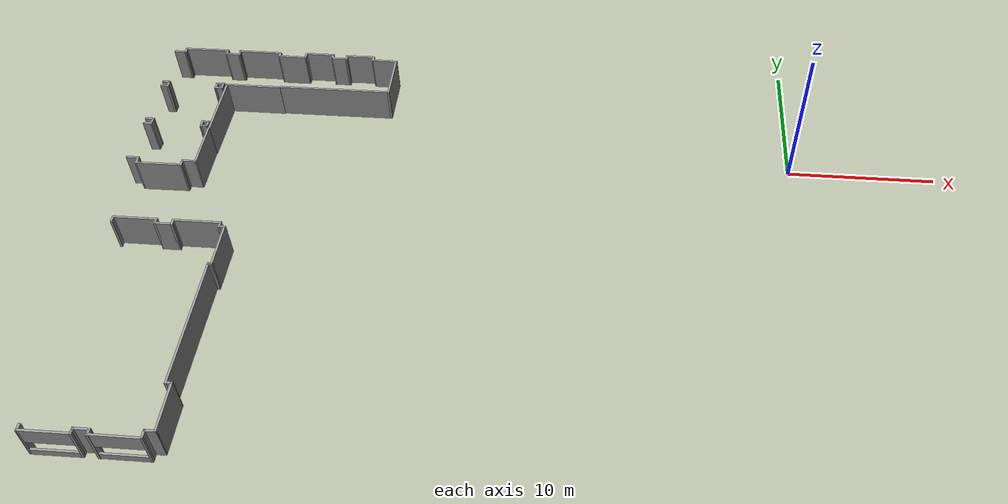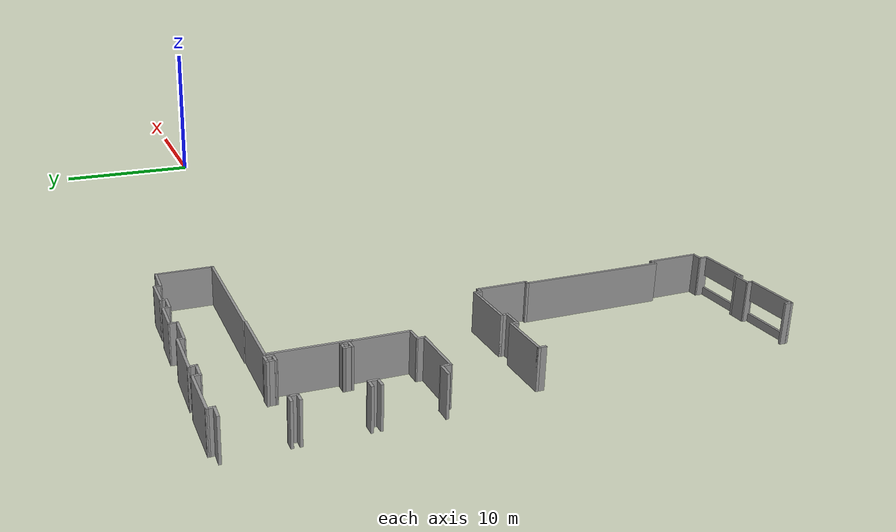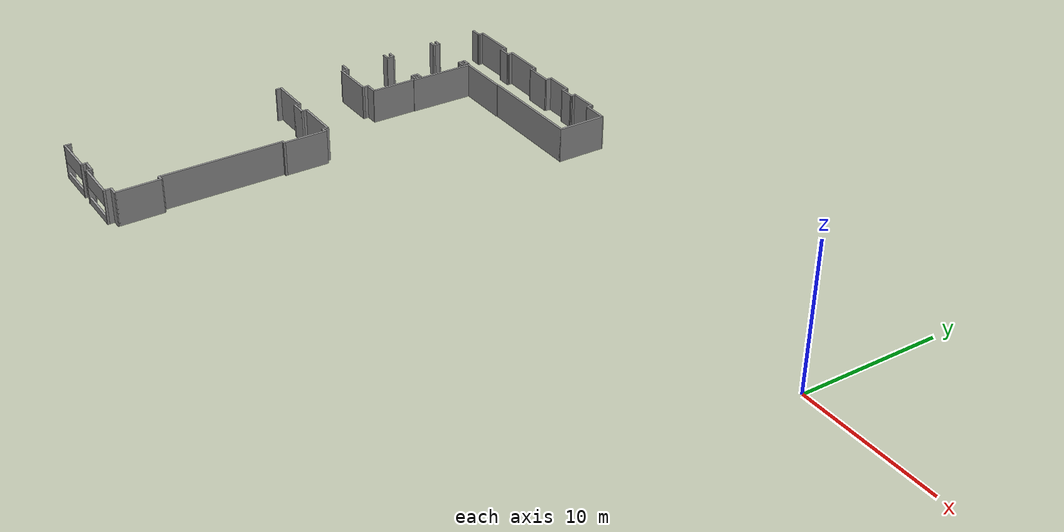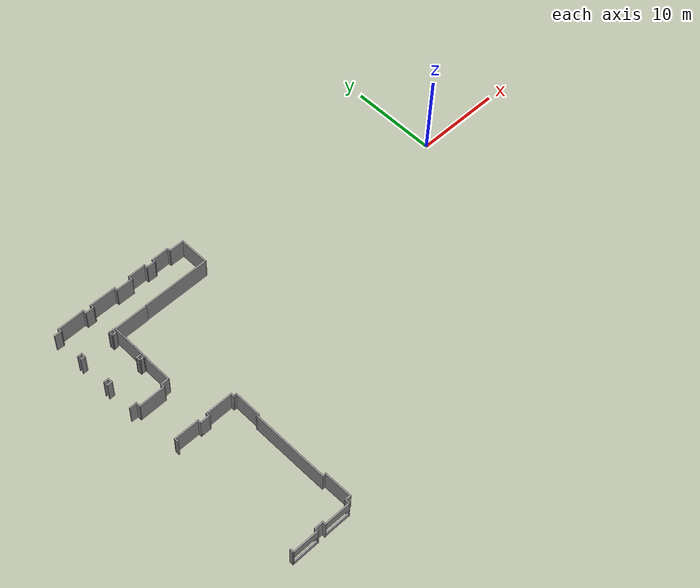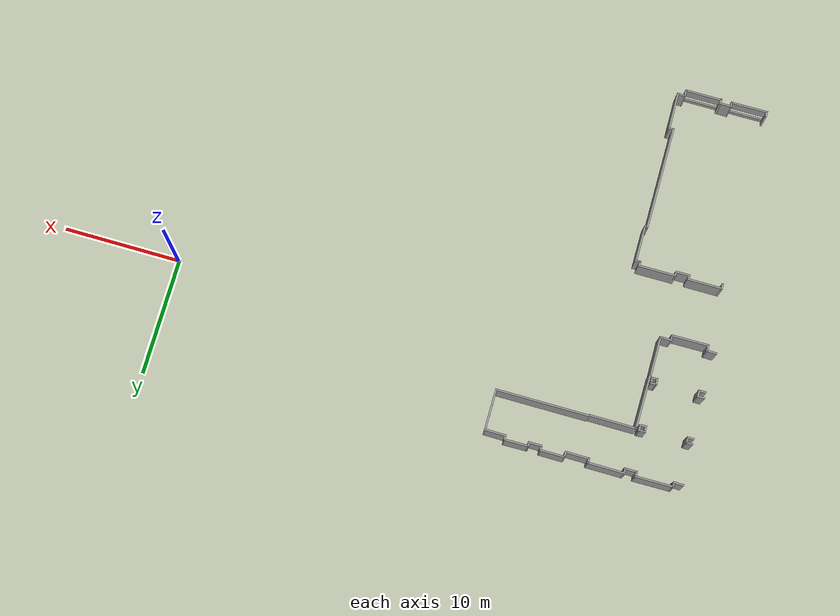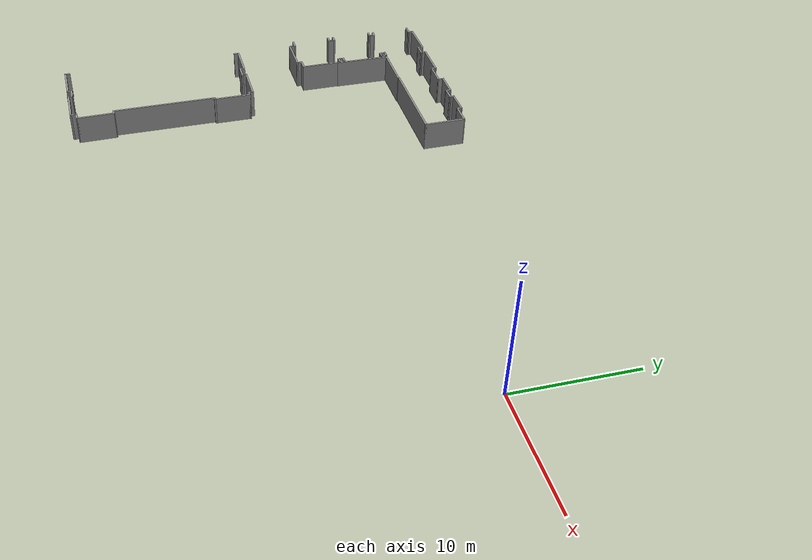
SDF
<sdf version="1.7">
 <model name="TD_n1">
  <pose>-30.6319 -9.22369 0 0 -0 0</pose>
  <link name="Door_3">
   <collision name="Door_3_Collision"><geometry><box><size>0 0.2 0</size></box></geometry></collision>
   <visual name="Door_3_Visual">
    <geometry><box><size>0 0.2 0</size></box></geometry>
    <material>
     <script><uri>file://media/materials/scripts/gazebo.material</uri><name>Gazebo/Grey</name></script>
    </material>
   </visual>
   <pose>30.6319 9.22369 0 0 0 -0.001641</pose>
  </link>
  <link name="Wall_10">
   <collision name="Wall_10_Collision">
    <geometry><box><size>3.25 0.15 2.5</size></box></geometry>
    <pose>0 0 1.25 0 -0 0</pose>
   </collision>
   <visual name="Wall_10_Visual">
    <pose>0 0 1.25 0 -0 0</pose>
    <geometry><box><size>3.25 0.15 2.5</size></box></geometry>
    <material>
     <script><uri>file://media/materials/scripts/gazebo.material</uri><name>Gazebo/Grey</name></script>
     <ambient>1 1 1 1</ambient>
    </material>
    <meta><layer>0</layer></meta>
   </visual>
   <pose>-8.21265 -0.375309 0 0 -0 0</pose>
  </link>
  <link name="Wall_11">
   <collision name="Wall_11_Collision">
    <geometry><box><size>0.5 0.15 2.5</size></box></geometry>
    <pose>0 0 1.25 0 -0 0</pose>
   </collision>
   <visual name="Wall_11_Visual">
    <pose>0 0 1.25 0 -0 0</pose>
    <geometry><box><size>0.5 0.15 2.5</size></box></geometry>
    <material>
     <script><uri>file://media/materials/scripts/gazebo.material</uri><name>Gazebo/Grey</name></script>
     <ambient>1 1 1 1</ambient>
    </material>
    <meta><layer>0</layer></meta>
   </visual>
   <pose>-6.66265 -0.55031 0 0 -0 -1.5708</pose>
  </link>
  <link name="Wall_12">
   <collision name="Wall_12_Collision">
    <geometry><box><size>0.5 0.15 2.5</size></box></geometry>
    <pose>0 0 1.25 0 -0 0</pose>
   </collision>
   <visual name="Wall_12_Visual">
    <pose>0 0 1.25 0 -0 0</pose>
    <geometry><box><size>0.5 0.15 2.5</size></box></geometry>
    <material>
     <script><uri>file://media/materials/scripts/gazebo.material</uri><name>Gazebo/Grey</name></script>
     <ambient>1 1 1 1</ambient>
    </material>
    <meta><layer>0</layer></meta>
   </visual>
   <pose>-6.48765 -0.72531 0 0 -0 0</pose>
  </link>
  <link name="Wall_13">
   <collision name="Wall_13_Collision">
    <geometry><box><size>3.25 0.15 2.5</size></box></geometry>
    <pose>0 0 1.25 0 -0 0</pose>
   </collision>
   <visual name="Wall_13_Visual">
    <pose>0 0 1.25 0 -0 0</pose>
    <geometry><box><size>3.25 0.15 2.5</size></box></geometry>
    <material>
     <script><uri>file://media/materials/scripts/gazebo.material</uri><name>Gazebo/Grey</name></script>
     <ambient>1 1 1 1</ambient>
    </material>
    <meta><layer>0</layer></meta>
   </visual>
   <pose>-6.31265 -2.27531 0 0 -0 -1.5708</pose>
  </link>
  <link name="Wall_14">
   <collision name="Wall_14_Collision">
    <geometry><box><size>0.25 0.15 2.5</size></box></geometry>
    <pose>0 0 1.25 0 -0 0</pose>
   </collision>
   <visual name="Wall_14_Visual">
    <pose>0 0 1.25 0 -0 0</pose>
    <geometry><box><size>0.25 0.15 2.5</size></box></geometry>
    <material>
     <script><uri>file://media/materials/scripts/gazebo.material</uri><name>Gazebo/Grey</name></script>
     <ambient>1 1 1 1</ambient>
    </material>
    <meta><layer>0</layer></meta>
   </visual>
   <pose>-6.36265 -3.82531 0 0 -0 3.14159</pose>
  </link>
  <link name="Wall_141">
   <collision name="Wall_141_Collision">
    <geometry><box><size>0.902276 0.15 2.5</size></box></geometry>
    <pose>0 0 1.25 0 -0 0</pose>
   </collision>
   <visual name="Wall_141_Visual">
    <pose>0 0 1.25 0 -0 0</pose>
    <geometry><box><size>0.902276 0.15 2.5</size></box></geometry>
    <material>
     <script><uri>file://media/materials/scripts/gazebo.material</uri><name>Gazebo/Grey</name></script>
     <ambient>1 1 1 1</ambient>
    </material>
    <meta><layer>0</layer></meta>
   </visual>
   <pose>-14.1938 5.06918 0 0 -0 -0.023252</pose>
  </link>
  <link name="Wall_142">
   <collision name="Wall_142_Collision">
    <geometry><box><size>0.623525 0.15 2.5</size></box></geometry>
    <pose>0 0 1.25 0 -0 0</pose>
   </collision>
   <visual name="Wall_142_Visual">
    <pose>0 0 1.25 0 -0 0</pose>
    <geometry><box><size>0.623525 0.15 2.5</size></box></geometry>
    <material>
     <script><uri>file://media/materials/scripts/gazebo.material</uri><name>Gazebo/Grey</name></script>
     <ambient>1 1 1 1</ambient>
    </material>
    <meta><layer>0</layer></meta>
   </visual>
   <pose>-13.809 4.82432 0 0 -0 -1.53378</pose>
  </link>
  <link name="Wall_143">
   <collision name="Wall_143_Collision">
    <geometry><box><size>3.21067 0.15 2.5</size></box></geometry>
    <pose>0 0 1.25 0 -0 0</pose>
   </collision>
   <visual name="Wall_143_Visual">
    <pose>0 0 1.25 0 -0 0</pose>
    <geometry><box><size>3.21067 0.15 2.5</size></box></geometry>
    <material>
     <script><uri>file://media/materials/scripts/gazebo.material</uri><name>Gazebo/Grey</name></script>
     <ambient>1 1 1 1</ambient>
    </material>
    <meta><layer>0</layer></meta>
   </visual>
   <pose>-12.27 4.59859 0 0 -0 0.006783</pose>
  </link>
  <link name="Wall_144">
   <collision name="Wall_144_Collision">
    <geometry><box><size>0.546457 0.15 2.5</size></box></geometry>
    <pose>0 0 1.25 0 -0 0</pose>
   </collision>
   <visual name="Wall_144_Visual">
    <pose>0 0 1.25 0 -0 0</pose>
    <geometry><box><size>0.546457 0.15 2.5</size></box></geometry>
    <material>
     <script><uri>file://media/materials/scripts/gazebo.material</uri><name>Gazebo/Grey</name></script>
     <ambient>1 1 1 1</ambient>
    </material>
    <meta><layer>0</layer></meta>
   </visual>
   <pose>-10.7428 4.80708 0 0 -0 1.56986</pose>
  </link>
  <link name="Wall_145">
   <collision name="Wall_145_Collision">
    <geometry><box><size>0.962787 0.15 2.5</size></box></geometry>
    <pose>0 0 1.25 0 -0 0</pose>
   </collision>
   <visual name="Wall_145_Visual">
    <pose>0 0 1.25 0 -0 0</pose>
    <geometry><box><size>0.962787 0.15 2.5</size></box></geometry>
    <material>
     <script><uri>file://media/materials/scripts/gazebo.material</uri><name>Gazebo/Grey</name></script>
     <ambient>1 1 1 1</ambient>
    </material>
    <meta><layer>0</layer></meta>
   </visual>
   <pose>-10.3362 5.00736 0 0 -0 0.005319</pose>
  </link>
  <link name="Wall_147">
   <collision name="Wall_147_Collision">
    <geometry><box><size>3.40145 0.15 2.5</size></box></geometry>
    <pose>0 0 1.25 0 -0 0</pose>
   </collision>
   <visual name="Wall_147_Visual">
    <pose>0 0 1.25 0 -0 0</pose>
    <geometry><box><size>3.40145 0.15 2.5</size></box></geometry>
    <material>
     <script><uri>file://media/materials/scripts/gazebo.material</uri><name>Gazebo/Grey</name></script>
     <ambient>1 1 1 1</ambient>
    </material>
    <meta><layer>0</layer></meta>
   </visual>
   <pose>-9.85346 6.63743 0 0 -0 1.57312</pose>
  </link>
  <link name="Wall_149">
   <collision name="Wall_149_Collision">
    <geometry><box><size>4.73903 0.15 2.5</size></box></geometry>
    <pose>0 0 1.25 0 -0 0</pose>
   </collision>
   <visual name="Wall_149_Visual">
    <pose>0 0 1.25 0 -0 0</pose>
    <geometry><box><size>4.73903 0.15 2.5</size></box></geometry>
    <material>
     <script><uri>file://media/materials/scripts/gazebo.material</uri><name>Gazebo/Grey</name></script>
     <ambient>1 1 1 1</ambient>
    </material>
    <meta><layer>0</layer></meta>
   </visual>
   <pose>-9.79598 10.5803 0 0 -0 1.5614</pose>
  </link>
  <link name="Wall_15">
   <collision name="Wall_15_Collision">
    <geometry><box><size>0.25 0.15 2.5</size></box></geometry>
    <pose>0 0 1.25 0 -0 0</pose>
   </collision>
   <visual name="Wall_15_Visual">
    <pose>0 0 1.25 0 -0 0</pose>
    <geometry><box><size>0.25 0.15 2.5</size></box></geometry>
    <material>
     <script><uri>file://media/materials/scripts/gazebo.material</uri><name>Gazebo/Grey</name></script>
     <ambient>1 1 1 1</ambient>
    </material>
    <meta><layer>0</layer></meta>
   </visual>
   <pose>-6.46265 -3.82531 0 0 -0 3.14159</pose>
  </link>
  <link name="Wall_151">
   <collision name="Wall_151_Collision">
    <geometry><box><size>3.98094 0.15 2.5</size></box></geometry>
    <pose>0 0 1.25 0 -0 0</pose>
   </collision>
   <visual name="Wall_151_Visual">
    <pose>0 0 1.25 0 -0 0</pose>
    <geometry><box><size>3.98094 0.15 2.5</size></box></geometry>
    <material>
     <script><uri>file://media/materials/scripts/gazebo.material</uri><name>Gazebo/Grey</name></script>
     <ambient>1 1 1 1</ambient>
    </material>
    <meta><layer>0</layer></meta>
   </visual>
   <pose>-7.87045 12.8812 0 0 -0 -0.002626</pose>
  </link>
  <link name="Wall_154">
   <collision name="Wall_154_Collision">
    <geometry><box><size>0.587151 0.15 2.5</size></box></geometry>
    <pose>0 0 1.25 0 -0 0</pose>
   </collision>
   <visual name="Wall_154_Visual">
    <pose>0 0 1.25 0 -0 0</pose>
    <geometry><box><size>0.587151 0.15 2.5</size></box></geometry>
    <material>
     <script><uri>file://media/materials/scripts/gazebo.material</uri><name>Gazebo/Grey</name></script>
     <ambient>1 1 1 1</ambient>
    </material>
    <meta><layer>0</layer></meta>
   </visual>
   <pose>-10.4579 8.69933 0 0 -0 -1.54449</pose>
  </link>
  <link name="Wall_155">
   <collision name="Wall_155_Collision">
    <geometry><box><size>0.56416 0.15 2.5</size></box></geometry>
    <pose>0 0 1.25 0 -0 0</pose>
   </collision>
   <visual name="Wall_155_Visual">
    <pose>0 0 1.25 0 -0 0</pose>
    <geometry><box><size>0.56416 0.15 2.5</size></box></geometry>
    <material>
     <script><uri>file://media/materials/scripts/gazebo.material</uri><name>Gazebo/Grey</name></script>
     <ambient>1 1 1 1</ambient>
    </material>
    <meta><layer>0</layer></meta>
   </visual>
   <pose>-10.2451 8.48658 0 0 -0 0.027771</pose>
  </link>
  <link name="Wall_156">
   <collision name="Wall_156_Collision">
    <geometry><box><size>0.575655 0.15 2.5</size></box></geometry>
    <pose>0 0 1.25 0 -0 0</pose>
   </collision>
   <visual name="Wall_156_Visual">
    <pose>0 0 1.25 0 -0 0</pose>
    <geometry><box><size>0.575655 0.15 2.5</size></box></geometry>
    <material>
     <script><uri>file://media/materials/scripts/gazebo.material</uri><name>Gazebo/Grey</name></script>
     <ambient>1 1 1 1</ambient>
    </material>
    <meta><layer>0</layer></meta>
   </visual>
   <pose>-10.0381 8.70508 0 0 -0 1.5708</pose>
  </link>
  <link name="Wall_159">
   <collision name="Wall_159_Collision">
    <geometry><box><size>0.545044 0.15 2.5</size></box></geometry>
    <pose>0 0 1.25 0 -0 0</pose>
   </collision>
   <visual name="Wall_159_Visual">
    <pose>0 0 1.25 0 -0 0</pose>
    <geometry><box><size>0.545044 0.15 2.5</size></box></geometry>
    <material>
     <script><uri>file://media/materials/scripts/gazebo.material</uri><name>Gazebo/Grey</name></script>
     <ambient>1 1 1 1</ambient>
    </material>
    <meta><layer>0</layer></meta>
   </visual>
   <pose>-10.2661 8.91954 0 0 -0 0.00866</pose>
  </link>
  <link name="Wall_16">
   <collision name="Wall_16_Collision">
    <geometry><box><size>0.15 0.15 2.5</size></box></geometry>
    <pose>0 0 1.25 0 -0 0</pose>
   </collision>
   <visual name="Wall_16_Visual">
    <pose>0 0 1.25 0 -0 0</pose>
    <geometry><box><size>0.15 0.15 2.5</size></box></geometry>
    <material>
     <script><uri>file://media/materials/scripts/gazebo.material</uri><name>Gazebo/Grey</name></script>
     <ambient>1 1 1 1</ambient>
    </material>
    <meta><layer>0</layer></meta>
   </visual>
   <pose>-6.51265 -3.82531 0 0 -0 0</pose>
  </link>
  <link name="Wall_17">
   <collision name="Wall_17_Collision">
    <geometry><box><size>0.15 0.15 2.5</size></box></geometry>
    <pose>0 0 1.25 0 -0 0</pose>
   </collision>
   <visual name="Wall_17_Visual">
    <pose>0 0 1.25 0 -0 0</pose>
    <geometry><box><size>0.15 0.15 2.5</size></box></geometry>
    <material>
     <script><uri>file://media/materials/scripts/gazebo.material</uri><name>Gazebo/Grey</name></script>
     <ambient>1 1 1 1</ambient>
    </material>
    <meta><layer>0</layer></meta>
   </visual>
   <pose>-6.51265 -3.82531 0 0 -0 0</pose>
  </link>
  <link name="Wall_19">
   <collision name="Wall_19_Collision">
    <geometry><box><size>9 0.15 2.5</size></box></geometry>
    <pose>0 0 1.25 0 -0 0</pose>
   </collision>
   <visual name="Wall_19_Visual">
    <pose>0 0 1.25 0 -0 0</pose>
    <geometry><box><size>9 0.15 2.5</size></box></geometry>
    <material>
     <script><uri>file://media/materials/scripts/gazebo.material</uri><name>Gazebo/Grey</name></script>
     <ambient>1 1 1 1</ambient>
    </material>
    <meta><layer>0</layer></meta>
   </visual>
   <pose>-6.51265 -8.25031 0 0 -0 -1.5708</pose>
  </link>
  <link name="Wall_20">
   <collision name="Wall_20_Collision">
    <geometry><box><size>0.5 0.15 2.5</size></box></geometry>
    <pose>0 0 1.25 0 -0 0</pose>
   </collision>
   <visual name="Wall_20_Visual">
    <pose>0 0 1.25 0 -0 0</pose>
    <geometry><box><size>0.5 0.15 2.5</size></box></geometry>
    <material>
     <script><uri>file://media/materials/scripts/gazebo.material</uri><name>Gazebo/Grey</name></script>
     <ambient>1 1 1 1</ambient>
    </material>
    <meta><layer>0</layer></meta>
   </visual>
   <pose>-6.33765 -12.6753 0 0 -0 0</pose>
  </link>
  <link name="Wall_21">
   <collision name="Wall_21_Collision">
    <geometry><box><size>3.24645 0.15 2.5</size></box></geometry>
    <pose>0 0 1.25 0 -0 0</pose>
   </collision>
   <visual name="Wall_21_Visual">
    <pose>0 0 1.25 0 -0 0</pose>
    <geometry><box><size>3.24645 0.15 2.5</size></box></geometry>
    <material>
     <script><uri>file://media/materials/scripts/gazebo.material</uri><name>Gazebo/Grey</name></script>
     <ambient>1 1 1 1</ambient>
    </material>
    <meta><layer>0</layer></meta>
   </visual>
   <pose>-6.14506 -14.2234 0 0 -0 -1.55943</pose>
  </link>
  <link name="Wall_22">
   <collision name="Wall_22_Collision">
    <geometry><box><size>0.75 0.15 2.5</size></box></geometry>
    <pose>0 0 1.25 0 -0 0</pose>
   </collision>
   <visual name="Wall_22_Visual">
    <pose>0 0 1.25 0 -0 0</pose>
    <geometry><box><size>0.75 0.15 2.5</size></box></geometry>
    <material>
     <script><uri>file://media/materials/scripts/gazebo.material</uri><name>Gazebo/Grey</name></script>
     <ambient>1 1 1 1</ambient>
    </material>
    <meta><layer>0</layer></meta>
   </visual>
   <pose>-6.42747 -15.8419 0 0 -0 3.14159</pose>
  </link>
  <link name="Wall_24">
   <collision name="Wall_24_Collision">
    <geometry><box><size>0.6281 0.15 2.5</size></box></geometry>
    <pose>0 0 1.25 0 -0 0</pose>
   </collision>
   <visual name="Wall_24_Visual">
    <pose>0 0 1.25 0 -0 0</pose>
    <geometry><box><size>0.6281 0.15 2.5</size></box></geometry>
    <material>
     <script><uri>file://media/materials/scripts/gazebo.material</uri><name>Gazebo/Grey</name></script>
     <ambient>1 1 1 1</ambient>
    </material>
    <meta><layer>0</layer></meta>
   </visual>
   <pose>-6.73142 -16.0809 0 0 -0 -1.58731</pose>
  </link>
  <link name="Wall_267">
   <collision name="Wall_267_Collision">
    <geometry><box><size>0.628143 0.15 2.5</size></box></geometry>
    <pose>0 0 1.25 0 -0 0</pose>
   </collision>
   <visual name="Wall_267_Visual">
    <pose>0 0 1.25 0 -0 0</pose>
    <geometry><box><size>0.628143 0.15 2.5</size></box></geometry>
    <material>
     <script><uri>file://media/materials/scripts/gazebo.material</uri><name>Gazebo/Grey</name></script>
     <ambient>1 1 1 1</ambient>
    </material>
    <meta><layer>0</layer></meta>
   </visual>
   <pose>-14.2413 8.46593 0 0 -0 0.020803</pose>
  </link>
  <link name="Wall_268">
   <collision name="Wall_268_Collision">
    <geometry><box><size>0.628699 0.15 2.5</size></box></geometry>
    <pose>0 0 1.25 0 -0 0</pose>
   </collision>
   <visual name="Wall_268_Visual">
    <pose>0 0 1.25 0 -0 0</pose>
    <geometry><box><size>0.628699 0.15 2.5</size></box></geometry>
    <material>
     <script><uri>file://media/materials/scripts/gazebo.material</uri><name>Gazebo/Grey</name></script>
     <ambient>1 1 1 1</ambient>
    </material>
    <meta><layer>0</layer></meta>
   </visual>
   <pose>-13.9902 8.71024 0 0 -0 1.56138</pose>
  </link>
  <link name="Wall_270">
   <collision name="Wall_270_Collision">
    <geometry><box><size>0.647202 0.15 2.5</size></box></geometry>
    <pose>0 0 1.25 0 -0 0</pose>
   </collision>
   <visual name="Wall_270_Visual">
    <pose>0 0 1.25 0 -0 0</pose>
    <geometry><box><size>0.647202 0.15 2.5</size></box></geometry>
    <material>
     <script><uri>file://media/materials/scripts/gazebo.material</uri><name>Gazebo/Grey</name></script>
     <ambient>1 1 1 1</ambient>
    </material>
    <meta><layer>0</layer></meta>
   </visual>
   <pose>-14.2365 8.95206 0 0 -0 -0.01</pose>
  </link>
  <link name="Wall_29">
   <collision name="Wall_29_Collision">
    <geometry><box><size>0.5 0.15 2.5</size></box></geometry>
    <pose>0 0 1.25 0 -0 0</pose>
   </collision>
   <visual name="Wall_29_Visual">
    <pose>0 0 1.25 0 -0 0</pose>
    <geometry><box><size>0.5 0.15 2.5</size></box></geometry>
    <material>
     <script><uri>file://media/materials/scripts/gazebo.material</uri><name>Gazebo/Grey</name></script>
     <ambient>1 1 1 1</ambient>
    </material>
    <meta><layer>0</layer></meta>
   </visual>
   <pose>-9.77392 -16.1762 0 0 -0 -1.5708</pose>
  </link>
  <link name="Wall_31">
   <collision name="Wall_31_Collision">
    <geometry><box><size>1.08081 0.15 2.5</size></box></geometry>
    <pose>0 0 1.25 0 -0 0</pose>
   </collision>
   <visual name="Wall_31_Visual">
    <pose>0 0 1.25 0 -0 0</pose>
    <geometry><box><size>1.08081 0.15 2.5</size></box></geometry>
    <material>
     <script><uri>file://media/materials/scripts/gazebo.material</uri><name>Gazebo/Grey</name></script>
     <ambient>1 1 1 1</ambient>
    </material>
    <meta><layer>0</layer></meta>
   </visual>
   <pose>-10.2393 -15.9966 0 0 -0 3.12103</pose>
  </link>
  <link name="Wall_36">
   <collision name="Wall_36_Collision">
    <geometry><box><size>0.475293 0.15 2.5</size></box></geometry>
    <pose>0 0 1.25 0 -0 0</pose>
   </collision>
   <visual name="Wall_36_Visual">
    <pose>0 0 1.25 0 -0 0</pose>
    <geometry><box><size>0.475293 0.15 2.5</size></box></geometry>
    <material>
     <script><uri>file://media/materials/scripts/gazebo.material</uri><name>Gazebo/Grey</name></script>
     <ambient>1 1 1 1</ambient>
    </material>
    <meta><layer>0</layer></meta>
   </visual>
   <pose>-10.7097 -16.1596 0 0 -0 -1.60137</pose>
  </link>
  <link name="Wall_360">
   <collision name="Wall_360_Collision">
    <geometry><box><size>0.904868 0.15 2.5</size></box></geometry>
    <pose>0 0 1.25 0 -0 0</pose>
   </collision>
   <visual name="Wall_360_Visual">
    <pose>0 0 1.25 0 -0 0</pose>
    <geometry><box><size>0.904868 0.15 2.5</size></box></geometry>
    <material>
     <script><uri>file://media/materials/scripts/gazebo.material</uri><name>Gazebo/Grey</name></script>
     <ambient>1 1 1 1</ambient>
    </material>
    <meta><layer>0</layer></meta>
   </visual>
   <pose>-14.2031 16.3257 0 0 -0 -0.017542</pose>
  </link>
  <link name="Wall_361">
   <collision name="Wall_361_Collision">
    <geometry><box><size>0.50732 0.15 2.5</size></box></geometry>
    <pose>0 0 1.25 0 -0 0</pose>
   </collision>
   <visual name="Wall_361_Visual">
    <pose>0 0 1.25 0 -0 0</pose>
    <geometry><box><size>0.50732 0.15 2.5</size></box></geometry>
    <material>
     <script><uri>file://media/materials/scripts/gazebo.material</uri><name>Gazebo/Grey</name></script>
     <ambient>1 1 1 1</ambient>
    </material>
    <meta><layer>0</layer></meta>
   </visual>
   <pose>-13.8328 16.4976 0 0 -0 1.60782</pose>
  </link>
  <link name="Wall_362">
   <collision name="Wall_362_Collision">
    <geometry><box><size>3.27155 0.15 2.5</size></box></geometry>
    <pose>0 0 1.25 0 -0 0</pose>
   </collision>
   <visual name="Wall_362_Visual">
    <pose>0 0 1.25 0 -0 0</pose>
    <geometry><box><size>3.27155 0.15 2.5</size></box></geometry>
    <material>
     <script><uri>file://media/materials/scripts/gazebo.material</uri><name>Gazebo/Grey</name></script>
     <ambient>1 1 1 1</ambient>
    </material>
    <meta><layer>0</layer></meta>
   </visual>
   <pose>-12.2789 16.6894 0 0 -0 0.008474</pose>
  </link>
  <link name="Wall_363">
   <collision name="Wall_363_Collision">
    <geometry><box><size>0.533753 0.15 2.5</size></box></geometry>
    <pose>0 0 1.25 0 -0 0</pose>
   </collision>
   <visual name="Wall_363_Visual">
    <pose>0 0 1.25 0 -0 0</pose>
    <geometry><box><size>0.533753 0.15 2.5</size></box></geometry>
    <material>
     <script><uri>file://media/materials/scripts/gazebo.material</uri><name>Gazebo/Grey</name></script>
     <ambient>1 1 1 1</ambient>
    </material>
    <meta><layer>0</layer></meta>
   </visual>
   <pose>-10.7117 16.5108 0 0 -0 -1.53633</pose>
  </link>
  <link name="Wall_364">
   <collision name="Wall_364_Collision">
    <geometry><box><size>1.1022 0.15 2.5</size></box></geometry>
    <pose>0 0 1.25 0 -0 0</pose>
   </collision>
   <visual name="Wall_364_Visual">
    <pose>0 0 1.25 0 -0 0</pose>
    <geometry><box><size>1.1022 0.15 2.5</size></box></geometry>
    <material>
     <script><uri>file://media/materials/scripts/gazebo.material</uri><name>Gazebo/Grey</name></script>
     <ambient>1 1 1 1</ambient>
    </material>
    <meta><layer>0</layer></meta>
   </visual>
   <pose>-10.229 16.3125 0 0 -0 -0.013888</pose>
  </link>
  <link name="Wall_365">
   <collision name="Wall_365_Collision">
    <geometry><box><size>0.534436 0.15 2.5</size></box></geometry>
    <pose>0 0 1.25 0 -0 0</pose>
   </collision>
   <visual name="Wall_365_Visual">
    <pose>0 0 1.25 0 -0 0</pose>
    <geometry><box><size>0.534436 0.15 2.5</size></box></geometry>
    <material>
     <script><uri>file://media/materials/scripts/gazebo.material</uri><name>Gazebo/Grey</name></script>
     <ambient>1 1 1 1</ambient>
    </material>
    <meta><layer>0</layer></meta>
   </visual>
   <pose>-9.76612 16.4976 0 0 -0 1.63965</pose>
  </link>
  <link name="Wall_366">
   <collision name="Wall_366_Collision">
    <geometry><box><size>3.19178 0.15 2.5</size></box></geometry>
    <pose>0 0 1.25 0 -0 0</pose>
   </collision>
   <visual name="Wall_366_Visual">
    <pose>0 0 1.25 0 -0 0</pose>
    <geometry><box><size>3.19178 0.15 2.5</size></box></geometry>
    <material>
     <script><uri>file://media/materials/scripts/gazebo.material</uri><name>Gazebo/Grey</name></script>
     <ambient>1 1 1 1</ambient>
    </material>
    <meta><layer>0</layer></meta>
   </visual>
   <pose>-8.25847 16.6828 0 0 -0 -0.004348</pose>
  </link>
  <link name="Wall_367">
   <collision name="Wall_367_Collision">
    <geometry><box><size>0.494104 0.15 2.5</size></box></geometry>
    <pose>0 0 1.25 0 -0 0</pose>
   </collision>
   <visual name="Wall_367_Visual">
    <pose>0 0 1.25 0 -0 0</pose>
    <geometry><box><size>0.494104 0.15 2.5</size></box></geometry>
    <material>
     <script><uri>file://media/materials/scripts/gazebo.material</uri><name>Gazebo/Grey</name></script>
     <ambient>1 1 1 1</ambient>
    </material>
    <meta><layer>0</layer></meta>
   </visual>
   <pose>-6.73098 16.5042 0 0 -0 -1.53235</pose>
  </link>
  <link name="Wall_369">
   <collision name="Wall_369_Collision">
    <geometry><box><size>0.582489 0.15 2.5</size></box></geometry>
    <pose>0 0 1.25 0 -0 0</pose>
   </collision>
   <visual name="Wall_369_Visual">
    <pose>0 0 1.25 0 -0 0</pose>
    <geometry><box><size>0.582489 0.15 2.5</size></box></geometry>
    <material>
     <script><uri>file://media/materials/scripts/gazebo.material</uri><name>Gazebo/Grey</name></script>
     <ambient>1 1 1 1</ambient>
    </material>
    <meta><layer>0</layer></meta>
   </visual>
   <pose>-14.245 12.9026 0 0 -0 -0.020415</pose>
  </link>
  <link name="Wall_37">
   <collision name="Wall_37_Collision">
    <geometry><box><size>0.485232 0.15 2.5</size></box></geometry>
    <pose>0 0 1.25 0 -0 0</pose>
   </collision>
   <visual name="Wall_37_Visual">
    <pose>0 0 1.25 0 -0 0</pose>
    <geometry><box><size>0.485232 0.15 2.5</size></box></geometry>
    <material>
     <script><uri>file://media/materials/scripts/gazebo.material</uri><name>Gazebo/Grey</name></script>
     <ambient>1 1 1 1</ambient>
    </material>
    <meta><layer>0</layer></meta>
   </visual>
   <pose>-10.7097 -16.1546 0 0 -0 1.54113</pose>
  </link>
  <link name="Wall_370">
   <collision name="Wall_370_Collision">
    <geometry><box><size>0.587601 0.15 2.5</size></box></geometry>
    <pose>0 0 1.25 0 -0 0</pose>
   </collision>
   <visual name="Wall_370_Visual">
    <pose>0 0 1.25 0 -0 0</pose>
    <geometry><box><size>0.587601 0.15 2.5</size></box></geometry>
    <material>
     <script><uri>file://media/materials/scripts/gazebo.material</uri><name>Gazebo/Grey</name></script>
     <ambient>1 1 1 1</ambient>
    </material>
    <meta><layer>0</layer></meta>
   </visual>
   <pose>-14.0288 12.6796 0 0 -0 -1.5708</pose>
  </link>
  <link name="Wall_371">
   <collision name="Wall_371_Collision">
    <geometry><box><size>0.587252 0.15 2.5</size></box></geometry>
    <pose>0 0 1.25 0 -0 0</pose>
   </collision>
   <visual name="Wall_371_Visual">
    <pose>0 0 1.25 0 -0 0</pose>
    <geometry><box><size>0.587252 0.15 2.5</size></box></geometry>
    <material>
     <script><uri>file://media/materials/scripts/gazebo.material</uri><name>Gazebo/Grey</name></script>
     <ambient>1 1 1 1</ambient>
    </material>
    <meta><layer>0</layer></meta>
   </visual>
   <pose>-14.2474 12.4609 0 0 -0 3.14159</pose>
  </link>
  <link name="Wall_374">
   <collision name="Wall_374_Collision">
    <geometry><box><size>0.637267 0.15 2.5</size></box></geometry>
    <pose>0 0 1.25 0 -0 0</pose>
   </collision>
   <visual name="Wall_374_Visual">
    <pose>0 0 1.25 0 -0 0</pose>
    <geometry><box><size>0.637267 0.15 2.5</size></box></geometry>
    <material>
     <script><uri>file://media/materials/scripts/gazebo.material</uri><name>Gazebo/Grey</name></script>
     <ambient>1 1 1 1</ambient>
    </material>
    <meta><layer>0</layer></meta>
   </visual>
   <pose>-10.3047 12.9592 0 0 -0 0.035699</pose>
  </link>
  <link name="Wall_375">
   <collision name="Wall_375_Collision">
    <geometry><box><size>0.58513 0.15 2.5</size></box></geometry>
    <pose>0 0 1.25 0 -0 0</pose>
   </collision>
   <visual name="Wall_375_Visual">
    <pose>0 0 1.25 0 -0 0</pose>
    <geometry><box><size>0.58513 0.15 2.5</size></box></geometry>
    <material>
     <script><uri>file://media/materials/scripts/gazebo.material</uri><name>Gazebo/Grey</name></script>
     <ambient>1 1 1 1</ambient>
    </material>
    <meta><layer>0</layer></meta>
   </visual>
   <pose>-10.0612 12.7505 0 0 -0 -1.5708</pose>
  </link>
  <link name="Wall_376">
   <collision name="Wall_376_Collision">
    <geometry><box><size>0.611198 0.15 2.5</size></box></geometry>
    <pose>0 0 1.25 0 -0 0</pose>
   </collision>
   <visual name="Wall_376_Visual">
    <pose>0 0 1.25 0 -0 0</pose>
    <geometry><box><size>0.611198 0.15 2.5</size></box></geometry>
    <material>
     <script><uri>file://media/materials/scripts/gazebo.material</uri><name>Gazebo/Grey</name></script>
     <ambient>1 1 1 1</ambient>
    </material>
    <meta><layer>0</layer></meta>
   </visual>
   <pose>-10.2916 12.5244 0 0 -0 -3.10387</pose>
  </link>
  <link name="Wall_377">
   <collision name="Wall_377_Collision">
    <geometry><box><size>0.532707 0.15 2.5</size></box></geometry>
    <pose>0 0 1.25 0 -0 0</pose>
   </collision>
   <visual name="Wall_377_Visual">
    <pose>0 0 1.25 0 -0 0</pose>
    <geometry><box><size>0.532707 0.15 2.5</size></box></geometry>
    <material>
     <script><uri>file://media/materials/scripts/gazebo.material</uri><name>Gazebo/Grey</name></script>
     <ambient>1 1 1 1</ambient>
    </material>
    <meta><layer>0</layer></meta>
   </visual>
   <pose>-10.5177 12.707 0 0 -0 1.54807</pose>
  </link>
  <link name="Wall_389">
   <collision name="Wall_389_Collision">
    <geometry><box><size>2.06997 0.15 2.5</size></box></geometry>
    <pose>0 0 1.25 0 -0 0</pose>
   </collision>
   <visual name="Wall_389_Visual">
    <pose>0 0 1.25 0 -0 0</pose>
    <geometry><box><size>2.06997 0.15 2.5</size></box></geometry>
    <material>
     <script><uri>file://media/materials/scripts/gazebo.material</uri><name>Gazebo/Grey</name></script>
     <ambient>1 1 1 1</ambient>
    </material>
    <meta><layer>0</layer></meta>
   </visual>
   <pose>-5.76441 16.3258 0 0 -0 -0.006746</pose>
  </link>
  <link name="Wall_39">
   <pose>-8.2459 -16.3241 0 0 -0 3.1378</pose>
   <visual name="Wall_39_Visual_0">
    <pose>-1.53126 0 1.25 0 -0 0</pose>
    <geometry><box><size>0.118498 0.15 2.5</size></box></geometry>
    <material>
     <script><uri>file://media/materials/scripts/gazebo.material</uri><name>Gazebo/Grey</name></script>
     <ambient>1 1 1 1</ambient>
    </material>
    <meta><layer>0</layer></meta>
   </visual>
   <collision name="Wall_39_Collision_0">
    <geometry><box><size>0.118498 0.15 2.5</size></box></geometry>
    <pose>-1.53126 0 1.25 0 -0 0</pose>
   </collision>
   <visual name="Wall_39_Visual_1">
    <pose>0.059249 0 0.25 0 -0 0</pose>
    <geometry><box><size>3.06252 0.15 0.5</size></box></geometry>
    <material>
     <script><uri>file://media/materials/scripts/gazebo.material</uri><name>Gazebo/Grey</name></script>
     <ambient>1 1 1 1</ambient>
    </material>
    <meta><layer>0</layer></meta>
   </visual>
   <collision name="Wall_39_Collision_1">
    <geometry><box><size>3.06252 0.15 0.5</size></box></geometry>
    <pose>0.059249 0 0.25 0 -0 0</pose>
   </collision>
   <visual name="Wall_39_Visual_2">
    <pose>1.55702 0 1.5 0 -0 0</pose>
    <geometry><box><size>0.066991 0.15 2</size></box></geometry>
    <material>
     <script><uri>file://media/materials/scripts/gazebo.material</uri><name>Gazebo/Grey</name></script>
     <ambient>1 1 1 1</ambient>
    </material>
    <meta><layer>0</layer></meta>
   </visual>
   <collision name="Wall_39_Collision_2">
    <geometry><box><size>0.066991 0.15 2</size></box></geometry>
    <pose>1.55702 0 1.5 0 -0 0</pose>
   </collision>
   <visual name="Wall_39_Visual_3">
    <pose>0.025753 0 1.9 0 -0 0</pose>
    <geometry><box><size>2.99553 0.15 1.2</size></box></geometry>
    <material>
     <script><uri>file://media/materials/scripts/gazebo.material</uri><name>Gazebo/Grey</name></script>
     <ambient>1 1 1 1</ambient>
    </material>
    <meta><layer>0</layer></meta>
   </visual>
   <collision name="Wall_39_Collision_3">
    <geometry><box><size>2.99553 0.15 1.2</size></box></geometry>
    <pose>0.025753 0 1.9 0 -0 0</pose>
   </collision>
  </link>
  <link name="Wall_390">
   <collision name="Wall_390_Collision">
    <geometry><box><size>0.57693 0.15 2.5</size></box></geometry>
    <pose>0 0 1.25 0 -0 0</pose>
   </collision>
   <visual name="Wall_390_Visual">
    <pose>0 0 1.25 0 -0 0</pose>
    <geometry><box><size>0.57693 0.15 2.5</size></box></geometry>
    <material>
     <script><uri>file://media/materials/scripts/gazebo.material</uri><name>Gazebo/Grey</name></script>
     <ambient>1 1 1 1</ambient>
    </material>
    <meta><layer>0</layer></meta>
   </visual>
   <pose>-4.78924 16.5323 0 0 -0 1.49949</pose>
  </link>
  <link name="Wall_391">
   <collision name="Wall_391_Collision">
    <geometry><box><size>2.14235 0.15 2.5</size></box></geometry>
    <pose>0 0 1.25 0 -0 0</pose>
   </collision>
   <visual name="Wall_391_Visual">
    <pose>0 0 1.25 0 -0 0</pose>
    <geometry><box><size>2.14235 0.15 2.5</size></box></geometry>
    <material>
     <script><uri>file://media/materials/scripts/gazebo.material</uri><name>Gazebo/Grey</name></script>
     <ambient>1 1 1 1</ambient>
    </material>
    <meta><layer>0</layer></meta>
   </visual>
   <pose>-3.77786 16.7452 0 0 -0 0</pose>
  </link>
  <link name="Wall_392">
   <collision name="Wall_392_Collision">
    <geometry><box><size>0.516275 0.15 2.5</size></box></geometry>
    <pose>0 0 1.25 0 -0 0</pose>
   </collision>
   <visual name="Wall_392_Visual">
    <pose>0 0 1.25 0 -0 0</pose>
    <geometry><box><size>0.516275 0.15 2.5</size></box></geometry>
    <material>
     <script><uri>file://media/materials/scripts/gazebo.material</uri><name>Gazebo/Grey</name></script>
     <ambient>1 1 1 1</ambient>
    </material>
    <meta><layer>0</layer></meta>
   </visual>
   <pose>-2.76648 16.5627 0 0 -0 -1.48765</pose>
  </link>
  <link name="Wall_393">
   <collision name="Wall_393_Collision">
    <geometry><box><size>1.1842 0.15 2.5</size></box></geometry>
    <pose>0 0 1.25 0 -0 0</pose>
   </collision>
   <visual name="Wall_393_Visual">
    <pose>0 0 1.25 0 -0 0</pose>
    <geometry><box><size>1.1842 0.15 2.5</size></box></geometry>
    <material>
     <script><uri>file://media/materials/scripts/gazebo.material</uri><name>Gazebo/Grey</name></script>
     <ambient>1 1 1 1</ambient>
    </material>
    <meta><layer>0</layer></meta>
   </visual>
   <pose>-2.23417 16.3802 0 0 -0 0</pose>
  </link>
  <link name="Wall_394">
   <collision name="Wall_394_Collision">
    <geometry><box><size>0.454555 0.15 2.5</size></box></geometry>
    <pose>0 0 1.25 0 -0 0</pose>
   </collision>
   <visual name="Wall_394_Visual">
    <pose>0 0 1.25 0 -0 0</pose>
    <geometry><box><size>0.454555 0.15 2.5</size></box></geometry>
    <material>
     <script><uri>file://media/materials/scripts/gazebo.material</uri><name>Gazebo/Grey</name></script>
     <ambient>1 1 1 1</ambient>
    </material>
    <meta><layer>0</layer></meta>
   </visual>
   <pose>-1.72468 16.5323 0 0 -0 1.62075</pose>
  </link>
  <link name="Wall_395">
   <collision name="Wall_395_Collision">
    <geometry><box><size>2.12737 0.15 2.5</size></box></geometry>
    <pose>0 0 1.25 0 -0 0</pose>
   </collision>
   <visual name="Wall_395_Visual">
    <pose>0 0 1.25 0 -0 0</pose>
    <geometry><box><size>2.12737 0.15 2.5</size></box></geometry>
    <material>
     <script><uri>file://media/materials/scripts/gazebo.material</uri><name>Gazebo/Grey</name></script>
     <ambient>1 1 1 1</ambient>
    </material>
    <meta><layer>0</layer></meta>
   </visual>
   <pose>-0.743715 16.6996 0 0 -0 0.015383</pose>
  </link>
  <link name="Wall_396">
   <collision name="Wall_396_Collision">
    <geometry><box><size>0.500132 0.15 2.5</size></box></geometry>
    <pose>0 0 1.25 0 -0 0</pose>
   </collision>
   <visual name="Wall_396_Visual">
    <pose>0 0 1.25 0 -0 0</pose>
    <geometry><box><size>0.500132 0.15 2.5</size></box></geometry>
    <material>
     <script><uri>file://media/materials/scripts/gazebo.material</uri><name>Gazebo/Grey</name></script>
     <ambient>1 1 1 1</ambient>
    </material>
    <meta><layer>0</layer></meta>
   </visual>
   <pose>0.260063 16.5399 0 0 -0 -1.48406</pose>
  </link>
  <link name="Wall_397">
   <collision name="Wall_397_Collision">
    <geometry><box><size>1.86866 0.15 2.5</size></box></geometry>
    <pose>0 0 1.25 0 -0 0</pose>
   </collision>
   <visual name="Wall_397_Visual">
    <pose>0 0 1.25 0 -0 0</pose>
    <geometry><box><size>1.86866 0.15 2.5</size></box></geometry>
    <material>
     <script><uri>file://media/materials/scripts/gazebo.material</uri><name>Gazebo/Grey</name></script>
     <ambient>1 1 1 1</ambient>
    </material>
    <meta><layer>0</layer></meta>
   </visual>
   <pose>1.13457 16.3574 0 0 -0 -0.008849</pose>
  </link>
  <link name="Wall_400">
   <collision name="Wall_400_Collision">
    <geometry><box><size>7.95209 0.15 2.5</size></box></geometry>
    <pose>0 0 1.25 0 -0 0</pose>
   </collision>
   <visual name="Wall_400_Visual">
    <pose>0 0 1.25 0 -0 0</pose>
    <geometry><box><size>7.95209 0.15 2.5</size></box></geometry>
    <material>
     <script><uri>file://media/materials/scripts/gazebo.material</uri><name>Gazebo/Grey</name></script>
     <ambient>1 1 1 1</ambient>
    </material>
    <meta><layer>0</layer></meta>
   </visual>
   <pose>-1.90718 12.9278 0 0 -0 0</pose>
  </link>
  <link name="Wall_402">
   <collision name="Wall_402_Collision">
    <geometry><box><size>3.572 0.15 2.5</size></box></geometry>
    <pose>0 0 1.25 0 -0 0</pose>
   </collision>
   <visual name="Wall_402_Visual">
    <pose>0 0 1.25 0 -0 0</pose>
    <geometry><box><size>3.572 0.15 2.5</size></box></geometry>
    <material>
     <script><uri>file://media/materials/scripts/gazebo.material</uri><name>Gazebo/Grey</name></script>
     <ambient>1 1 1 1</ambient>
    </material>
    <meta><layer>0</layer></meta>
   </visual>
   <pose>1.99386 14.6388 0 0 -0 1.5708</pose>
  </link>
  <link name="Wall_41">
   <pose>-12.2341 -16.3296 0 0 -0 -3.13996</pose>
   <visual name="Wall_41_Visual_0">
    <pose>-1.52542 0 1.25 0 -0 0</pose>
    <geometry><box><size>0.148041 0.15 2.5</size></box></geometry>
    <material>
     <script><uri>file://media/materials/scripts/gazebo.material</uri><name>Gazebo/Grey</name></script>
     <ambient>1 1 1 1</ambient>
    </material>
    <meta><layer>0</layer></meta>
   </visual>
   <collision name="Wall_41_Collision_0">
    <geometry><box><size>0.148041 0.15 2.5</size></box></geometry>
    <pose>-1.52542 0 1.25 0 -0 0</pose>
   </collision>
   <visual name="Wall_41_Visual_1">
    <pose>0.07402 0 0.25 0 -0 0</pose>
    <geometry><box><size>3.05083 0.15 0.5</size></box></geometry>
    <material>
     <script><uri>file://media/materials/scripts/gazebo.material</uri><name>Gazebo/Grey</name></script>
     <ambient>1 1 1 1</ambient>
    </material>
    <meta><layer>0</layer></meta>
   </visual>
   <collision name="Wall_41_Collision_1">
    <geometry><box><size>3.05083 0.15 0.5</size></box></geometry>
    <pose>0.07402 0 0.25 0 -0 0</pose>
   </collision>
   <visual name="Wall_41_Visual_2">
    <pose>1.57037 0 1.5 0 -0 0</pose>
    <geometry><box><size>0.058128 0.15 2</size></box></geometry>
    <material>
     <script><uri>file://media/materials/scripts/gazebo.material</uri><name>Gazebo/Grey</name></script>
     <ambient>1 1 1 1</ambient>
    </material>
    <meta><layer>0</layer></meta>
   </visual>
   <collision name="Wall_41_Collision_2">
    <geometry><box><size>0.058128 0.15 2</size></box></geometry>
    <pose>1.57037 0 1.5 0 -0 0</pose>
   </collision>
   <visual name="Wall_41_Visual_3">
    <pose>0.044956 0 1.9 0 -0 0</pose>
    <geometry><box><size>2.99271 0.15 1.2</size></box></geometry>
    <material>
     <script><uri>file://media/materials/scripts/gazebo.material</uri><name>Gazebo/Grey</name></script>
     <ambient>1 1 1 1</ambient>
    </material>
    <meta><layer>0</layer></meta>
   </visual>
   <collision name="Wall_41_Collision_3">
    <geometry><box><size>2.99271 0.15 1.2</size></box></geometry>
    <pose>0.044956 0 1.9 0 -0 0</pose>
   </collision>
  </link>
  <link name="Wall_42">
   <collision name="Wall_42_Collision">
    <geometry><box><size>0.5 0.15 2.5</size></box></geometry>
    <pose>0 0 1.25 0 -0 0</pose>
   </collision>
   <visual name="Wall_42_Visual">
    <pose>0 0 1.25 0 -0 0</pose>
    <geometry><box><size>0.5 0.15 2.5</size></box></geometry>
    <material>
     <script><uri>file://media/materials/scripts/gazebo.material</uri><name>Gazebo/Grey</name></script>
     <ambient>1 1 1 1</ambient>
    </material>
    <meta><layer>0</layer></meta>
   </visual>
   <pose>-13.7536 -16.1571 0 0 -0 1.5708</pose>
  </link>
  <link name="Wall_5">
   <collision name="Wall_5_Collision">
    <geometry><box><size>0.5 0.15 2.5</size></box></geometry>
    <pose>0 0 1.25 0 -0 0</pose>
   </collision>
   <visual name="Wall_5_Visual">
    <pose>0 0 1.25 0 -0 0</pose>
    <geometry><box><size>0.5 0.15 2.5</size></box></geometry>
    <material>
     <script><uri>file://media/materials/scripts/gazebo.material</uri><name>Gazebo/Grey</name></script>
     <ambient>1 1 1 1</ambient>
    </material>
    <meta><layer>0</layer></meta>
   </visual>
   <pose>-13.7127 -0.55031 0 0 -0 1.5708</pose>
  </link>
  <link name="Wall_6">
   <collision name="Wall_6_Collision">
    <geometry><box><size>3 0.15 2.5</size></box></geometry>
    <pose>0 0 1.25 0 -0 0</pose>
   </collision>
   <visual name="Wall_6_Visual">
    <pose>0 0 1.25 0 -0 0</pose>
    <geometry><box><size>3 0.15 2.5</size></box></geometry>
    <material>
     <script><uri>file://media/materials/scripts/gazebo.material</uri><name>Gazebo/Grey</name></script>
     <ambient>1 1 1 1</ambient>
    </material>
    <meta><layer>0</layer></meta>
   </visual>
   <pose>-12.2877 -0.375309 0 0 -0 0</pose>
  </link>
  <link name="Wall_7">
   <collision name="Wall_7_Collision">
    <geometry><box><size>0.5 0.15 2.5</size></box></geometry>
    <pose>0 0 1.25 0 -0 0</pose>
   </collision>
   <visual name="Wall_7_Visual">
    <pose>0 0 1.25 0 -0 0</pose>
    <geometry><box><size>0.5 0.15 2.5</size></box></geometry>
    <material>
     <script><uri>file://media/materials/scripts/gazebo.material</uri><name>Gazebo/Grey</name></script>
     <ambient>1 1 1 1</ambient>
    </material>
    <meta><layer>0</layer></meta>
   </visual>
   <pose>-10.8626 -0.55031 0 0 -0 -1.5708</pose>
  </link>
  <link name="Wall_8">
   <collision name="Wall_8_Collision">
    <geometry><box><size>1.25 0.15 2.5</size></box></geometry>
    <pose>0 0 1.25 0 -0 0</pose>
   </collision>
   <visual name="Wall_8_Visual">
    <pose>0 0 1.25 0 -0 0</pose>
    <geometry><box><size>1.25 0.15 2.5</size></box></geometry>
    <material>
     <script><uri>file://media/materials/scripts/gazebo.material</uri><name>Gazebo/Grey</name></script>
     <ambient>1 1 1 1</ambient>
    </material>
    <meta><layer>0</layer></meta>
   </visual>
   <pose>-10.3126 -0.72531 0 0 -0 0</pose>
  </link>
  <link name="Wall_9">
   <collision name="Wall_9_Collision">
    <geometry><box><size>0.5 0.15 2.5</size></box></geometry>
    <pose>0 0 1.25 0 -0 0</pose>
   </collision>
   <visual name="Wall_9_Visual">
    <pose>0 0 1.25 0 -0 0</pose>
    <geometry><box><size>0.5 0.15 2.5</size></box></geometry>
    <material>
     <script><uri>file://media/materials/scripts/gazebo.material</uri><name>Gazebo/Grey</name></script>
     <ambient>1 1 1 1</ambient>
    </material>
    <meta><layer>0</layer></meta>
   </visual>
   <pose>-9.76265 -0.55031 0 0 -0 1.5708</pose>
  </link>
  <static>1</static>
 </model>
</sdf>
